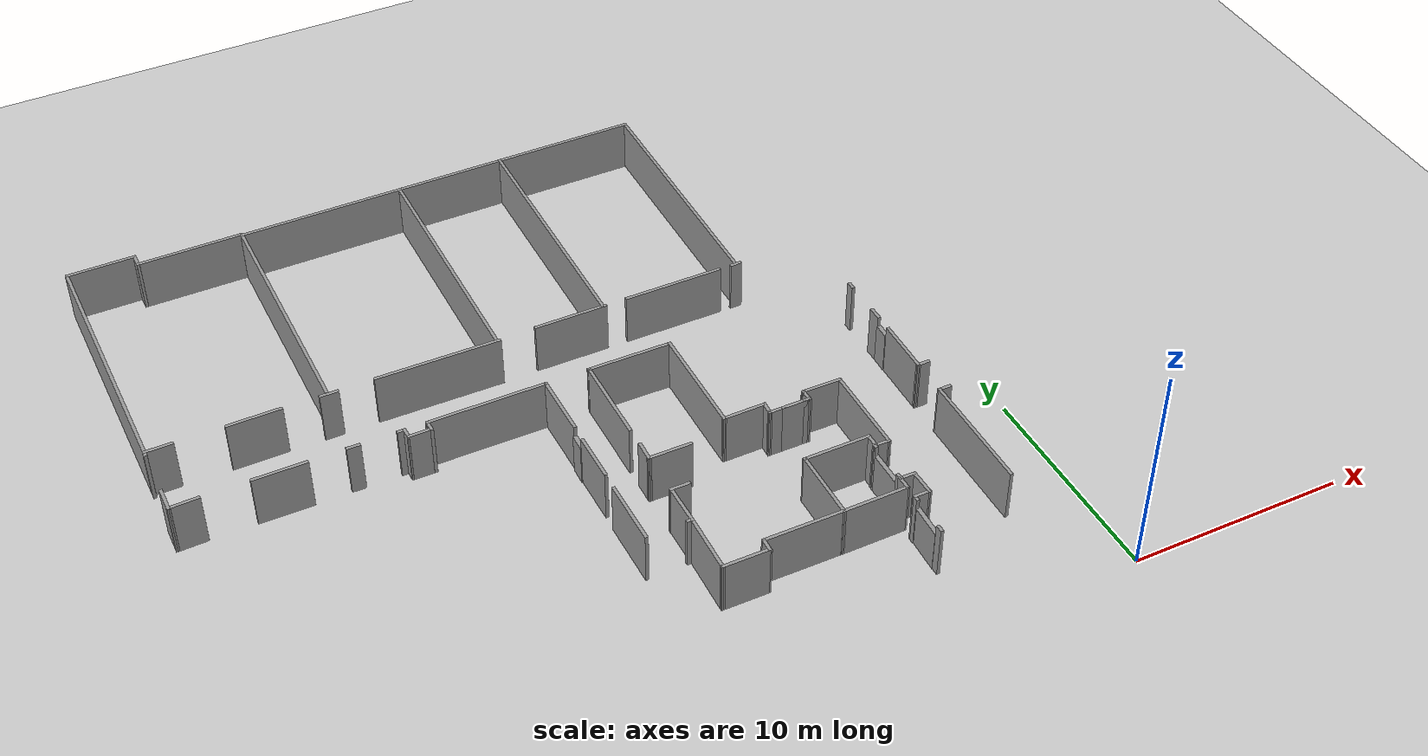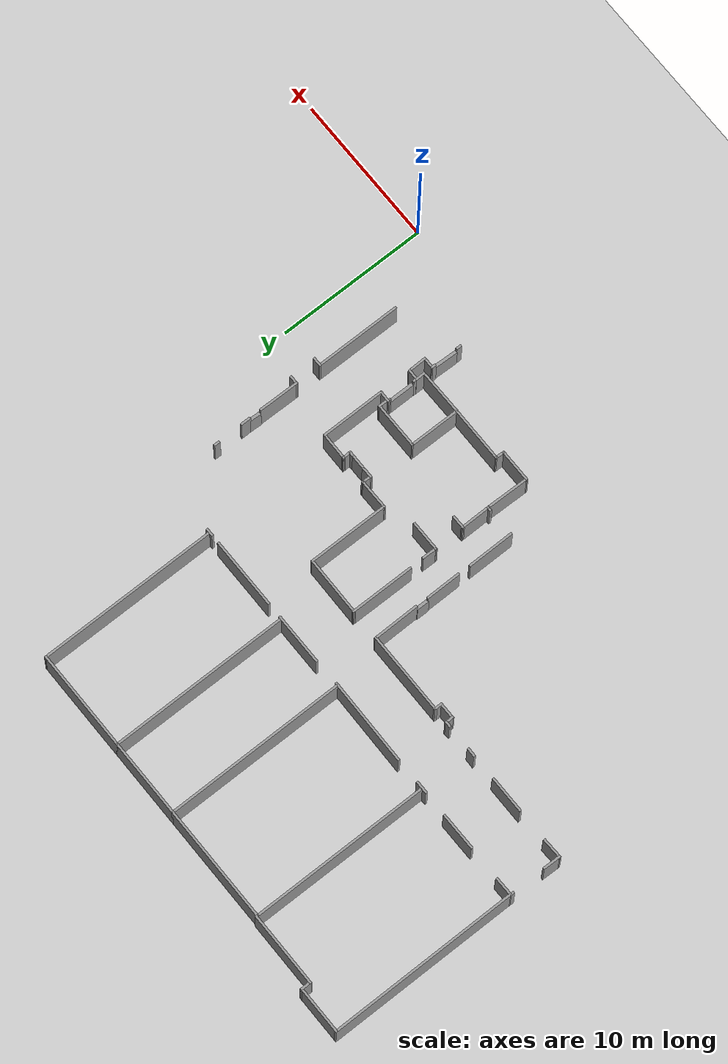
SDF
<sdf version="1.7">
 <world name="default">
  <model name="ground_plane">
   <static>1</static>
   <link name="link">
    <collision name="collision">
     <geometry><plane><normal>0 0 1</normal><size>100 100</size></plane></geometry>
     <surface><friction><ode><mu>100</mu><mu2>50</mu2></ode></friction></surface>
    </collision>
    <visual name="visual">
     <cast_shadows>0</cast_shadows>
     <geometry><plane><normal>0 0 1</normal><size>100 100</size></plane></geometry>
     <material>
      <script><uri>file://media/materials/scripts/gazebo.material</uri><name>Gazebo/Grey</name></script>
     </material>
    </visual>
   </link>
  </model>
  <model name="Hopper_Basement">
   <pose>6.01939 1.54901 0 0 -0 0</pose>
   <link name="Door_12">
    <collision name="Door_12_Collision">
     <geometry><box><size>1.59688 0.2 2</size></box></geometry>
     <pose>0 0 1 0 -0 0</pose>
    </collision>
    <visual name="Door_12_Visual">
     <pose>0 0 1 0 -0 0</pose>
     <geometry><box><size>1.59688 0.2 2</size></box></geometry>
     <material>
      <script><uri>file://media/materials/scripts/gazebo.material</uri><name>Gazebo/Grey</name></script>
     </material>
    </visual>
    <pose>-13.5825 2.58994 0 0 -0 1.5371</pose>
   </link>
   <link name="Door_13">
    <collision name="Door_13_Collision">
     <geometry><box><size>1.81181 0.2 2</size></box></geometry>
     <pose>0 0 1 0 -0 0</pose>
    </collision>
    <visual name="Door_13_Visual">
     <pose>0 0 1 0 -0 0</pose>
     <geometry><box><size>1.81181 0.2 2</size></box></geometry>
     <material>
      <script><uri>file://media/materials/scripts/gazebo.material</uri><name>Gazebo/Grey</name></script>
     </material>
    </visual>
    <pose>-13.5678 5.87601 0 0 -0 1.5708</pose>
   </link>
   <link name="Door_14">
    <collision name="Door_14_Collision">
     <geometry><box><size>0.8396 0.2 2</size></box></geometry>
     <pose>0 0 1 0 -0 0</pose>
    </collision>
    <visual name="Door_14_Visual">
     <pose>0 0 1 0 -0 0</pose>
     <geometry><box><size>0.8396 0.2 2</size></box></geometry>
     <material>
      <script><uri>file://media/materials/scripts/gazebo.material</uri><name>Gazebo/Grey</name></script>
     </material>
    </visual>
    <pose>-9.41509 13.4537 0 0 -0 1.53451</pose>
   </link>
   <link name="Door_15">
    <collision name="Door_15_Collision">
     <geometry><box><size>0.817522 0.2 2</size></box></geometry>
     <pose>0 0 1 0 -0 0</pose>
    </collision>
    <visual name="Door_15_Visual">
     <pose>0 0 1 0 -0 0</pose>
     <geometry><box><size>0.817522 0.2 2</size></box></geometry>
     <material>
      <script><uri>file://media/materials/scripts/gazebo.material</uri><name>Gazebo/Grey</name></script>
     </material>
    </visual>
    <pose>-24.285 12.9691 0 0 -0 -1.59292</pose>
   </link>
   <link name="Wall_102">
    <collision name="Wall_102_Collision">
     <geometry><box><size>0.551094 0.15 2.5</size></box></geometry>
     <pose>0 0 1.25 0 -0 0</pose>
    </collision>
    <visual name="Wall_102_Visual">
     <pose>0 0 1.25 0 -0 0</pose>
     <geometry><box><size>0.551094 0.15 2.5</size></box></geometry>
     <material>
      <script><uri>file://media/materials/scripts/gazebo.material</uri><name>Gazebo/Grey</name></script>
      <ambient>1 1 1 1</ambient>
     </material>
     <meta><layer>0</layer></meta>
    </visual>
    <pose>-13.3988 19.8843 0 0 -0 0.021736</pose>
   </link>
   <link name="Wall_19">
    <collision name="Wall_19_Collision">
     <geometry><box><size>0.363455 0.15 2.5</size></box></geometry>
     <pose>0 0 1.25 0 -0 0</pose>
    </collision>
    <visual name="Wall_19_Visual">
     <pose>0 0 1.25 0 -0 0</pose>
     <geometry><box><size>0.363455 0.15 2.5</size></box></geometry>
     <material>
      <script><uri>file://media/materials/scripts/gazebo.material</uri><name>Gazebo/Grey</name></script>
      <ambient>1 1 1 1</ambient>
     </material>
     <meta><layer>0</layer></meta>
    </visual>
    <pose>-13.6216 1.6256 0 0 -0 -1.5708</pose>
   </link>
   <link name="Wall_195">
    <collision name="Wall_195_Collision">
     <geometry><box><size>4.28295 0.15 2.5</size></box></geometry>
     <pose>0 0 1.25 0 -0 0</pose>
    </collision>
    <visual name="Wall_195_Visual">
     <pose>0 0 1.25 0 -0 0</pose>
     <geometry><box><size>4.28295 0.15 2.5</size></box></geometry>
     <material>
      <script><uri>file://media/materials/scripts/gazebo.material</uri><name>Gazebo/Grey</name></script>
      <ambient>1 1 1 1</ambient>
     </material>
     <meta><layer>0</layer></meta>
    </visual>
    <pose>-22.2568 14.3087 0 0 -0 1.56702</pose>
   </link>
   <link name="Wall_196">
    <collision name="Wall_196_Collision">
     <geometry><box><size>3.97116 0.15 2.5</size></box></geometry>
     <pose>0 0 1.25 0 -0 0</pose>
    </collision>
    <visual name="Wall_196_Visual">
     <pose>0 0 1.25 0 -0 0</pose>
     <geometry><box><size>3.97116 0.15 2.5</size></box></geometry>
     <material>
      <script><uri>file://media/materials/scripts/gazebo.material</uri><name>Gazebo/Grey</name></script>
      <ambient>1 1 1 1</ambient>
     </material>
     <meta><layer>0</layer></meta>
    </visual>
    <pose>-20.3385 16.3596 0 0 -0 -0.008163</pose>
   </link>
   <link name="Wall_197">
    <collision name="Wall_197_Collision">
     <geometry><box><size>5.40589 0.15 2.5</size></box></geometry>
     <pose>0 0 1.25 0 -0 0</pose>
    </collision>
    <visual name="Wall_197_Visual">
     <pose>0 0 1.25 0 -0 0</pose>
     <geometry><box><size>5.40589 0.15 2.5</size></box></geometry>
     <material>
      <script><uri>file://media/materials/scripts/gazebo.material</uri><name>Gazebo/Grey</name></script>
      <ambient>1 1 1 1</ambient>
     </material>
     <meta><layer>0</layer></meta>
    </visual>
    <pose>-18.4358 13.7161 0 0 -0 -1.57376</pose>
   </link>
   <link name="Wall_198">
    <collision name="Wall_198_Collision">
     <geometry><box><size>2.06838 0.15 2.5</size></box></geometry>
     <pose>0 0 1.25 0 -0 0</pose>
    </collision>
    <visual name="Wall_198_Visual">
     <pose>0 0 1.25 0 -0 0</pose>
     <geometry><box><size>2.06838 0.15 2.5</size></box></geometry>
     <material>
      <script><uri>file://media/materials/scripts/gazebo.material</uri><name>Gazebo/Grey</name></script>
      <ambient>1 1 1 1</ambient>
     </material>
     <meta><layer>0</layer></meta>
    </visual>
    <pose>-17.4844 11.0959 0 0 -0 0.00813</pose>
   </link>
   <link name="Wall_199">
    <collision name="Wall_199_Collision">
     <geometry><box><size>0.696084 0.15 2.5</size></box></geometry>
     <pose>0 0 1.25 0 -0 0</pose>
    </collision>
    <visual name="Wall_199_Visual">
     <pose>0 0 1.25 0 -0 0</pose>
     <geometry><box><size>0.696084 0.15 2.5</size></box></geometry>
     <material>
      <script><uri>file://media/materials/scripts/gazebo.material</uri><name>Gazebo/Grey</name></script>
      <ambient>1 1 1 1</ambient>
     </material>
     <meta><layer>0</layer></meta>
    </visual>
    <pose>-16.5409 10.8308 0 0 -0 -1.62788</pose>
   </link>
   <link name="Wall_200">
    <collision name="Wall_200_Collision">
     <geometry><box><size>0.789437 0.15 2.5</size></box></geometry>
     <pose>0 0 1.25 0 -0 0</pose>
    </collision>
    <visual name="Wall_200_Visual">
     <pose>0 0 1.25 0 -0 0</pose>
     <geometry><box><size>0.789437 0.15 2.5</size></box></geometry>
     <material>
      <script><uri>file://media/materials/scripts/gazebo.material</uri><name>Gazebo/Grey</name></script>
      <ambient>1 1 1 1</ambient>
     </material>
     <meta><layer>0</layer></meta>
    </visual>
    <pose>-16.2368 10.5579 0 0 -0 0</pose>
   </link>
   <link name="Wall_202">
    <collision name="Wall_202_Collision">
     <geometry><box><size>0.368901 0.15 2.5</size></box></geometry>
     <pose>0 0 1.25 0 -0 0</pose>
    </collision>
    <visual name="Wall_202_Visual">
     <pose>0 0 1.25 0 -0 0</pose>
     <geometry><box><size>0.368901 0.15 2.5</size></box></geometry>
     <material>
      <script><uri>file://media/materials/scripts/gazebo.material</uri><name>Gazebo/Grey</name></script>
      <ambient>1 1 1 1</ambient>
     </material>
     <meta><layer>0</layer></meta>
    </visual>
    <pose>-14.7785 10.5579 0 0 -0 0</pose>
   </link>
   <link name="Wall_203">
    <collision name="Wall_203_Collision">
     <geometry><box><size>0.649317 0.15 2.5</size></box></geometry>
     <pose>0 0 1.25 0 -0 0</pose>
    </collision>
    <visual name="Wall_203_Visual">
     <pose>0 0 1.25 0 -0 0</pose>
     <geometry><box><size>0.649317 0.15 2.5</size></box></geometry>
     <material>
      <script><uri>file://media/materials/scripts/gazebo.material</uri><name>Gazebo/Grey</name></script>
      <ambient>1 1 1 1</ambient>
     </material>
     <meta><layer>0</layer></meta>
    </visual>
    <pose>-14.6771 10.8074 0 0 -0 1.60204</pose>
   </link>
   <link name="Wall_204">
    <collision name="Wall_204_Collision">
     <geometry><box><size>1.86563 0.15 2.5</size></box></geometry>
     <pose>0 0 1.25 0 -0 0</pose>
    </collision>
    <visual name="Wall_204_Visual">
     <pose>0 0 1.25 0 -0 0</pose>
     <geometry><box><size>1.86563 0.15 2.5</size></box></geometry>
     <material>
      <script><uri>file://media/materials/scripts/gazebo.material</uri><name>Gazebo/Grey</name></script>
      <ambient>1 1 1 1</ambient>
     </material>
     <meta><layer>0</layer></meta>
    </visual>
    <pose>-13.8272 11.0492 0 0 -0 -0.009091</pose>
   </link>
   <link name="Wall_206">
    <collision name="Wall_206_Collision">
     <geometry><box><size>4.31227 0.15 2.5</size></box></geometry>
     <pose>0 0 1.25 0 -0 0</pose>
    </collision>
    <visual name="Wall_206_Visual">
     <pose>0 0 1.25 0 -0 0</pose>
     <geometry><box><size>4.31227 0.15 2.5</size></box></geometry>
     <material>
      <script><uri>file://media/materials/scripts/gazebo.material</uri><name>Gazebo/Grey</name></script>
      <ambient>1 1 1 1</ambient>
     </material>
     <meta><layer>0</layer></meta>
    </visual>
    <pose>-12.9384 8.94833 0 0 -0 -1.57067</pose>
   </link>
   <link name="Wall_207">
    <collision name="Wall_207_Collision">
     <geometry><box><size>0.806861 0.15 2.5</size></box></geometry>
     <pose>0 0 1.25 0 -0 0</pose>
    </collision>
    <visual name="Wall_207_Visual">
     <pose>0 0 1.25 0 -0 0</pose>
     <geometry><box><size>0.806861 0.15 2.5</size></box></geometry>
     <material>
      <script><uri>file://media/materials/scripts/gazebo.material</uri><name>Gazebo/Grey</name></script>
      <ambient>1 1 1 1</ambient>
     </material>
     <meta><layer>0</layer></meta>
    </visual>
    <pose>-13.2666 6.87689 0 0 -0 3.11208</pose>
   </link>
   <link name="Wall_208">
    <collision name="Wall_208_Collision">
     <geometry><box><size>0.25 0.15 2.5</size></box></geometry>
     <pose>0 0 1.25 0 -0 0</pose>
    </collision>
    <visual name="Wall_208_Visual">
     <pose>0 0 1.25 0 -0 0</pose>
     <geometry><box><size>0.25 0.15 2.5</size></box></geometry>
     <material>
      <script><uri>file://media/materials/scripts/gazebo.material</uri><name>Gazebo/Grey</name></script>
      <ambient>1 1 1 1</ambient>
     </material>
     <meta><layer>0</layer></meta>
    </visual>
    <pose>-13.595 6.83659 0 0 -0 -1.5708</pose>
   </link>
   <link name="Wall_210">
    <collision name="Wall_210_Collision">
     <geometry><box><size>0.344006 0.15 2.5</size></box></geometry>
     <pose>0 0 1.25 0 -0 0</pose>
    </collision>
    <visual name="Wall_210_Visual">
     <pose>0 0 1.25 0 -0 0</pose>
     <geometry><box><size>0.344006 0.15 2.5</size></box></geometry>
     <material>
      <script><uri>file://media/materials/scripts/gazebo.material</uri><name>Gazebo/Grey</name></script>
      <ambient>1 1 1 1</ambient>
     </material>
     <meta><layer>0</layer></meta>
    </visual>
    <pose>-13.5959 4.85334 0 0 -0 -1.51821</pose>
   </link>
   <link name="Wall_211">
    <collision name="Wall_211_Collision">
     <geometry><box><size>0.782198 0.15 2.5</size></box></geometry>
     <pose>0 0 1.25 0 -0 0</pose>
    </collision>
    <visual name="Wall_211_Visual">
     <pose>0 0 1.25 0 -0 0</pose>
     <geometry><box><size>0.782198 0.15 2.5</size></box></geometry>
     <material>
      <script><uri>file://media/materials/scripts/gazebo.material</uri><name>Gazebo/Grey</name></script>
      <ambient>1 1 1 1</ambient>
     </material>
     <meta><layer>0</layer></meta>
    </visual>
    <pose>-13.2747 4.75137 0 0 -0 -0.016128</pose>
   </link>
   <link name="Wall_212">
    <collision name="Wall_212_Collision">
     <geometry><box><size>1.29245 0.15 2.5</size></box></geometry>
     <pose>0 0 1.25 0 -0 0</pose>
    </collision>
    <visual name="Wall_212_Visual">
     <pose>0 0 1.25 0 -0 0</pose>
     <geometry><box><size>1.29245 0.15 2.5</size></box></geometry>
     <material>
      <script><uri>file://media/materials/scripts/gazebo.material</uri><name>Gazebo/Grey</name></script>
      <ambient>1 1 1 1</ambient>
     </material>
     <meta><layer>0</layer></meta>
    </visual>
    <pose>-12.9433 4.17525 0 0 -0 -1.54402</pose>
   </link>
   <link name="Wall_213">
    <collision name="Wall_213_Collision">
     <geometry><box><size>0.822985 0.15 2.5</size></box></geometry>
     <pose>0 0 1.25 0 -0 0</pose>
    </collision>
    <visual name="Wall_213_Visual">
     <pose>0 0 1.25 0 -0 0</pose>
     <geometry><box><size>0.822985 0.15 2.5</size></box></geometry>
     <material>
      <script><uri>file://media/materials/scripts/gazebo.material</uri><name>Gazebo/Grey</name></script>
      <ambient>1 1 1 1</ambient>
     </material>
     <meta><layer>0</layer></meta>
    </visual>
    <pose>-13.2645 3.60424 0 0 -0 3.14159</pose>
   </link>
   <link name="Wall_214">
    <collision name="Wall_214_Collision">
     <geometry><box><size>0.333824 0.15 2.5</size></box></geometry>
     <pose>0 0 1.25 0 -0 0</pose>
    </collision>
    <visual name="Wall_214_Visual">
     <pose>0 0 1.25 0 -0 0</pose>
     <geometry><box><size>0.333824 0.15 2.5</size></box></geometry>
     <material>
      <script><uri>file://media/materials/scripts/gazebo.material</uri><name>Gazebo/Grey</name></script>
      <ambient>1 1 1 1</ambient>
     </material>
     <meta><layer>0</layer></meta>
    </visual>
    <pose>-13.606 3.51247 0 0 -0 -1.6263</pose>
   </link>
   <link name="Wall_216">
    <collision name="Wall_216_Collision">
     <geometry><box><size>0.710821 0.15 2.5</size></box></geometry>
     <pose>0 0 1.25 0 -0 0</pose>
    </collision>
    <visual name="Wall_216_Visual">
     <pose>0 0 1.25 0 -0 0</pose>
     <geometry><box><size>0.710821 0.15 2.5</size></box></geometry>
     <material>
      <script><uri>file://media/materials/scripts/gazebo.material</uri><name>Gazebo/Grey</name></script>
      <ambient>1 1 1 1</ambient>
     </material>
     <meta><layer>0</layer></meta>
    </visual>
    <pose>-13.6111 4.47606 0 0 -0 -1.5708</pose>
   </link>
   <link name="Wall_217">
    <collision name="Wall_217_Collision">
     <geometry><box><size>3.10713 0.15 2.5</size></box></geometry>
     <pose>0 0 1.25 0 -0 0</pose>
    </collision>
    <visual name="Wall_217_Visual">
     <pose>0 0 1.25 0 -0 0</pose>
     <geometry><box><size>3.10713 0.15 2.5</size></box></geometry>
     <material>
      <script><uri>file://media/materials/scripts/gazebo.material</uri><name>Gazebo/Grey</name></script>
      <ambient>1 1 1 1</ambient>
     </material>
     <meta><layer>0</layer></meta>
    </visual>
    <pose>-15.0897 4.18035 0 0 -0 -3.13125</pose>
   </link>
   <link name="Wall_218">
    <collision name="Wall_218_Collision">
     <geometry><box><size>3.44356 0.15 2.5</size></box></geometry>
     <pose>0 0 1.25 0 -0 0</pose>
    </collision>
    <visual name="Wall_218_Visual">
     <pose>0 0 1.25 0 -0 0</pose>
     <geometry><box><size>3.44356 0.15 2.5</size></box></geometry>
     <material>
      <script><uri>file://media/materials/scripts/gazebo.material</uri><name>Gazebo/Grey</name></script>
      <ambient>1 1 1 1</ambient>
     </material>
     <meta><layer>0</layer></meta>
    </visual>
    <pose>-16.5631 5.81183 0 0 -0 1.5677</pose>
   </link>
   <link name="Wall_219">
    <collision name="Wall_219_Collision">
     <geometry><box><size>3.15804 0.15 2.5</size></box></geometry>
     <pose>0 0 1.25 0 -0 0</pose>
    </collision>
    <visual name="Wall_219_Visual">
     <pose>0 0 1.25 0 -0 0</pose>
     <geometry><box><size>3.15804 0.15 2.5</size></box></geometry>
     <material>
      <script><uri>file://media/materials/scripts/gazebo.material</uri><name>Gazebo/Grey</name></script>
      <ambient>1 1 1 1</ambient>
     </material>
     <meta><layer>0</layer></meta>
    </visual>
    <pose>-15.054 7.4637 0 0 -0 0.00339</pose>
   </link>
   <link name="Wall_220">
    <collision name="Wall_220_Collision">
     <geometry><box><size>0.710914 0.15 2.5</size></box></geometry>
     <pose>0 0 1.25 0 -0 0</pose>
    </collision>
    <visual name="Wall_220_Visual">
     <pose>0 0 1.25 0 -0 0</pose>
     <geometry><box><size>0.710914 0.15 2.5</size></box></geometry>
     <material>
      <script><uri>file://media/materials/scripts/gazebo.material</uri><name>Gazebo/Grey</name></script>
      <ambient>1 1 1 1</ambient>
     </material>
     <meta><layer>0</layer></meta>
    </visual>
    <pose>-13.55 7.18839 0 0 -0 -1.5708</pose>
   </link>
   <link name="Wall_222">
    <collision name="Wall_222_Collision">
     <geometry><box><size>0.874213 0.15 2.5</size></box></geometry>
     <pose>0 0 1.25 0 -0 0</pose>
    </collision>
    <visual name="Wall_222_Visual">
     <pose>0 0 1.25 0 -0 0</pose>
     <geometry><box><size>0.874213 0.15 2.5</size></box></geometry>
     <material>
      <script><uri>file://media/materials/scripts/gazebo.material</uri><name>Gazebo/Grey</name></script>
      <ambient>1 1 1 1</ambient>
     </material>
     <meta><layer>0</layer></meta>
    </visual>
    <pose>-32.7655 19.8747 0 0 -0 0</pose>
   </link>
   <link name="Wall_224">
    <collision name="Wall_224_Collision">
     <geometry><box><size>2.52355 0.15 2.5</size></box></geometry>
     <pose>0 0 1.25 0 -0 0</pose>
    </collision>
    <visual name="Wall_224_Visual">
     <pose>0 0 1.25 0 -0 0</pose>
     <geometry><box><size>2.52355 0.15 2.5</size></box></geometry>
     <material>
      <script><uri>file://media/materials/scripts/gazebo.material</uri><name>Gazebo/Grey</name></script>
      <ambient>1 1 1 1</ambient>
     </material>
     <meta><layer>0</layer></meta>
    </visual>
    <pose>-36.0574 19.8948 0 0 -0 -3.13594</pose>
   </link>
   <link name="Wall_226">
    <collision name="Wall_226_Collision">
     <geometry><box><size>1.31666 0.15 2.5</size></box></geometry>
     <pose>0 0 1.25 0 -0 0</pose>
    </collision>
    <visual name="Wall_226_Visual">
     <pose>0 0 1.25 0 -0 0</pose>
     <geometry><box><size>1.31666 0.15 2.5</size></box></geometry>
     <material>
      <script><uri>file://media/materials/scripts/gazebo.material</uri><name>Gazebo/Grey</name></script>
      <ambient>1 1 1 1</ambient>
     </material>
     <meta><layer>0</layer></meta>
    </visual>
    <pose>-40.1606 19.8948 0 0 -0 -3.1301</pose>
   </link>
   <link name="Wall_227">
    <collision name="Wall_227_Collision">
     <geometry><box><size>0.324833 0.15 2.5</size></box></geometry>
     <pose>0 0 1.25 0 -0 0</pose>
    </collision>
    <visual name="Wall_227_Visual">
     <pose>0 0 1.25 0 -0 0</pose>
     <geometry><box><size>0.324833 0.15 2.5</size></box></geometry>
     <material>
      <script><uri>file://media/materials/scripts/gazebo.material</uri><name>Gazebo/Grey</name></script>
      <ambient>1 1 1 1</ambient>
     </material>
     <meta><layer>0</layer></meta>
    </visual>
    <pose>-40.7506 19.801 0 0 -0 -1.64757</pose>
   </link>
   <link name="Wall_229">
    <collision name="Wall_229_Collision">
     <geometry><box><size>1.23622 0.15 2.5</size></box></geometry>
     <pose>0 0 1.25 0 -0 0</pose>
    </collision>
    <visual name="Wall_229_Visual">
     <pose>0 0 1.25 0 -0 0</pose>
     <geometry><box><size>1.23622 0.15 2.5</size></box></geometry>
     <material>
      <script><uri>file://media/materials/scripts/gazebo.material</uri><name>Gazebo/Grey</name></script>
      <ambient>1 1 1 1</ambient>
     </material>
     <meta><layer>0</layer></meta>
    </visual>
    <pose>-40.764 16.8778 0 0 -0 -1.58314</pose>
   </link>
   <link name="Wall_230">
    <collision name="Wall_230_Collision">
     <geometry><box><size>1.41109 0.15 2.5</size></box></geometry>
     <pose>0 0 1.25 0 -0 0</pose>
    </collision>
    <visual name="Wall_230_Visual">
     <pose>0 0 1.25 0 -0 0</pose>
     <geometry><box><size>1.41109 0.15 2.5</size></box></geometry>
     <material>
      <script><uri>file://media/materials/scripts/gazebo.material</uri><name>Gazebo/Grey</name></script>
      <ambient>1 1 1 1</ambient>
     </material>
     <meta><layer>0</layer></meta>
    </visual>
    <pose>-40.1404 16.3548 0 0 -0 0.031904</pose>
   </link>
   <link name="Wall_232">
    <collision name="Wall_232_Collision">
     <geometry><box><size>2.48321 0.15 2.5</size></box></geometry>
     <pose>0 0 1.25 0 -0 0</pose>
    </collision>
    <visual name="Wall_232_Visual">
     <pose>0 0 1.25 0 -0 0</pose>
     <geometry><box><size>2.48321 0.15 2.5</size></box></geometry>
     <material>
      <script><uri>file://media/materials/scripts/gazebo.material</uri><name>Gazebo/Grey</name></script>
      <ambient>1 1 1 1</ambient>
     </material>
     <meta><layer>0</layer></meta>
    </visual>
    <pose>-36.1043 16.375 0 0 -0 0</pose>
   </link>
   <link name="Wall_234">
    <collision name="Wall_234_Collision">
     <geometry><box><size>0.632912 0.15 2.5</size></box></geometry>
     <pose>0 0 1.25 0 -0 0</pose>
    </collision>
    <visual name="Wall_234_Visual">
     <pose>0 0 1.25 0 -0 0</pose>
     <geometry><box><size>0.632912 0.15 2.5</size></box></geometry>
     <material>
      <script><uri>file://media/materials/scripts/gazebo.material</uri><name>Gazebo/Grey</name></script>
      <ambient>1 1 1 1</ambient>
     </material>
     <meta><layer>0</layer></meta>
    </visual>
    <pose>-32.9264 16.3817 0 0 -0 -0.027771</pose>
   </link>
   <link name="Wall_236">
    <collision name="Wall_236_Collision">
     <geometry><box><size>0.418516 0.15 2.5</size></box></geometry>
     <pose>0 0 1.25 0 -0 0</pose>
    </collision>
    <visual name="Wall_236_Visual">
     <pose>0 0 1.25 0 -0 0</pose>
     <geometry><box><size>0.418516 0.15 2.5</size></box></geometry>
     <material>
      <script><uri>file://media/materials/scripts/gazebo.material</uri><name>Gazebo/Grey</name></script>
      <ambient>1 1 1 1</ambient>
     </material>
     <meta><layer>0</layer></meta>
    </visual>
    <pose>-30.8078 16.375 0 0 -0 0</pose>
   </link>
   <link name="Wall_237">
    <collision name="Wall_237_Collision">
     <geometry><box><size>0.592702 0.15 2.5</size></box></geometry>
     <pose>0 0 1.25 0 -0 0</pose>
    </collision>
    <visual name="Wall_237_Visual">
     <pose>0 0 1.25 0 -0 0</pose>
     <geometry><box><size>0.592702 0.15 2.5</size></box></geometry>
     <material>
      <script><uri>file://media/materials/scripts/gazebo.material</uri><name>Gazebo/Grey</name></script>
      <ambient>1 1 1 1</ambient>
     </material>
     <meta><layer>0</layer></meta>
    </visual>
    <pose>-30.667 16.1537 0 0 -0 -1.5405</pose>
   </link>
   <link name="Wall_238">
    <collision name="Wall_238_Collision">
     <geometry><box><size>1.15568 0.15 2.5</size></box></geometry>
     <pose>0 0 1.25 0 -0 0</pose>
    </collision>
    <visual name="Wall_238_Visual">
     <pose>0 0 1.25 0 -0 0</pose>
     <geometry><box><size>1.15568 0.15 2.5</size></box></geometry>
     <material>
      <script><uri>file://media/materials/scripts/gazebo.material</uri><name>Gazebo/Grey</name></script>
      <ambient>1 1 1 1</ambient>
     </material>
     <meta><layer>0</layer></meta>
    </visual>
    <pose>-30.1574 15.9325 0 0 -0 0</pose>
   </link>
   <link name="Wall_239">
    <collision name="Wall_239_Collision">
     <geometry><box><size>0.592702 0.15 2.5</size></box></geometry>
     <pose>0 0 1.25 0 -0 0</pose>
    </collision>
    <visual name="Wall_239_Visual">
     <pose>0 0 1.25 0 -0 0</pose>
     <geometry><box><size>0.592702 0.15 2.5</size></box></geometry>
     <material>
      <script><uri>file://media/materials/scripts/gazebo.material</uri><name>Gazebo/Grey</name></script>
      <ambient>1 1 1 1</ambient>
     </material>
     <meta><layer>0</layer></meta>
    </visual>
    <pose>-29.6546 16.1537 0 0 -0 1.5708</pose>
   </link>
   <link name="Wall_240">
    <collision name="Wall_240_Collision">
     <geometry><box><size>5.52703 0.15 2.5</size></box></geometry>
     <pose>0 0 1.25 0 -0 0</pose>
    </collision>
    <visual name="Wall_240_Visual">
     <pose>0 0 1.25 0 -0 0</pose>
     <geometry><box><size>5.52703 0.15 2.5</size></box></geometry>
     <material>
      <script><uri>file://media/materials/scripts/gazebo.material</uri><name>Gazebo/Grey</name></script>
      <ambient>1 1 1 1</ambient>
     </material>
     <meta><layer>0</layer></meta>
    </visual>
    <pose>-26.9661 16.375 0 0 -0 0</pose>
   </link>
   <link name="Wall_241">
    <collision name="Wall_241_Collision">
     <geometry><box><size>3.10011 0.15 2.5</size></box></geometry>
     <pose>0 0 1.25 0 -0 0</pose>
    </collision>
    <visual name="Wall_241_Visual">
     <pose>0 0 1.25 0 -0 0</pose>
     <geometry><box><size>3.10011 0.15 2.5</size></box></geometry>
     <material>
      <script><uri>file://media/materials/scripts/gazebo.material</uri><name>Gazebo/Grey</name></script>
      <ambient>1 1 1 1</ambient>
     </material>
     <meta><layer>0</layer></meta>
    </visual>
    <pose>-24.2641 14.9 0 0 -0 -1.56171</pose>
   </link>
   <link name="Wall_243">
    <collision name="Wall_243_Collision">
     <geometry><box><size>2.36266 0.15 2.5</size></box></geometry>
     <pose>0 0 1.25 0 -0 0</pose>
    </collision>
    <visual name="Wall_243_Visual">
     <pose>0 0 1.25 0 -0 0</pose>
     <geometry><box><size>2.36266 0.15 2.5</size></box></geometry>
     <material>
      <script><uri>file://media/materials/scripts/gazebo.material</uri><name>Gazebo/Grey</name></script>
      <ambient>1 1 1 1</ambient>
     </material>
     <meta><layer>0</layer></meta>
    </visual>
    <pose>-24.2708 11.4203 0 0 -0 -1.56474</pose>
   </link>
   <link name="Wall_245">
    <collision name="Wall_245_Collision">
     <geometry><box><size>3.14034 0.15 2.5</size></box></geometry>
     <pose>0 0 1.25 0 -0 0</pose>
    </collision>
    <visual name="Wall_245_Visual">
     <pose>0 0 1.25 0 -0 0</pose>
     <geometry><box><size>3.14034 0.15 2.5</size></box></geometry>
     <material>
      <script><uri>file://media/materials/scripts/gazebo.material</uri><name>Gazebo/Grey</name></script>
      <ambient>1 1 1 1</ambient>
     </material>
     <meta><layer>0</layer></meta>
    </visual>
    <pose>-24.2843 7.92056 0 0 -0 -1.56631</pose>
   </link>
   <link name="Wall_247">
    <collision name="Wall_247_Collision">
     <geometry><box><size>1.0351 0.15 2.5</size></box></geometry>
     <pose>0 0 1.25 0 -0 0</pose>
    </collision>
    <visual name="Wall_247_Visual">
     <pose>0 0 1.25 0 -0 0</pose>
     <geometry><box><size>1.0351 0.15 2.5</size></box></geometry>
     <material>
      <script><uri>file://media/materials/scripts/gazebo.material</uri><name>Gazebo/Grey</name></script>
      <ambient>1 1 1 1</ambient>
     </material>
     <meta><layer>0</layer></meta>
    </visual>
    <pose>-22.2595 10.7968 0 0 -0 -1.58595</pose>
   </link>
   <link name="Wall_248">
    <collision name="Wall_248_Collision">
     <geometry><box><size>2.05451 0.15 2.5</size></box></geometry>
     <pose>0 0 1.25 0 -0 0</pose>
    </collision>
    <visual name="Wall_248_Visual">
     <pose>0 0 1.25 0 -0 0</pose>
     <geometry><box><size>2.05451 0.15 2.5</size></box></geometry>
     <material>
      <script><uri>file://media/materials/scripts/gazebo.material</uri><name>Gazebo/Grey</name></script>
      <ambient>1 1 1 1</ambient>
     </material>
     <meta><layer>0</layer></meta>
    </visual>
    <pose>-21.3141 10.3543 0 0 -0 0</pose>
   </link>
   <link name="Wall_252">
    <collision name="Wall_252_Collision">
     <geometry><box><size>0.941247 0.15 2.5</size></box></geometry>
     <pose>0 0 1.25 0 -0 0</pose>
    </collision>
    <visual name="Wall_252_Visual">
     <pose>0 0 1.25 0 -0 0</pose>
     <geometry><box><size>0.941247 0.15 2.5</size></box></geometry>
     <material>
      <script><uri>file://media/materials/scripts/gazebo.material</uri><name>Gazebo/Grey</name></script>
      <ambient>1 1 1 1</ambient>
     </material>
     <meta><layer>0</layer></meta>
    </visual>
    <pose>-21.8438 8.32953 0 0 -0 3.14159</pose>
   </link>
   <link name="Wall_253">
    <collision name="Wall_253_Collision">
     <geometry><box><size>2.04072 0.15 2.5</size></box></geometry>
     <pose>0 0 1.25 0 -0 0</pose>
    </collision>
    <visual name="Wall_253_Visual">
     <pose>0 0 1.25 0 -0 0</pose>
     <geometry><box><size>2.04072 0.15 2.5</size></box></geometry>
     <material>
      <script><uri>file://media/materials/scripts/gazebo.material</uri><name>Gazebo/Grey</name></script>
      <ambient>1 1 1 1</ambient>
     </material>
     <meta><layer>0</layer></meta>
    </visual>
    <pose>-22.2327 7.38419 0 0 -0 -1.5637</pose>
   </link>
   <link name="Wall_254">
    <collision name="Wall_254_Collision">
     <geometry><box><size>0.338205 0.15 2.5</size></box></geometry>
     <pose>0 0 1.25 0 -0 0</pose>
    </collision>
    <visual name="Wall_254_Visual">
     <pose>0 0 1.25 0 -0 0</pose>
     <geometry><box><size>0.338205 0.15 2.5</size></box></geometry>
     <material>
      <script><uri>file://media/materials/scripts/gazebo.material</uri><name>Gazebo/Grey</name></script>
      <ambient>1 1 1 1</ambient>
     </material>
     <meta><layer>0</layer></meta>
    </visual>
    <pose>-22.3198 6.43886 0 0 -0 3.14159</pose>
   </link>
   <link name="Wall_256">
    <collision name="Wall_256_Collision">
     <geometry><box><size>2.95278 0.15 2.5</size></box></geometry>
     <pose>0 0 1.25 0 -0 0</pose>
    </collision>
    <visual name="Wall_256_Visual">
     <pose>0 0 1.25 0 -0 0</pose>
     <geometry><box><size>2.95278 0.15 2.5</size></box></geometry>
     <material>
      <script><uri>file://media/materials/scripts/gazebo.material</uri><name>Gazebo/Grey</name></script>
      <ambient>1 1 1 1</ambient>
     </material>
     <meta><layer>0</layer></meta>
    </visual>
    <pose>-22.2528 5.03761 0 0 -0 -1.58993</pose>
   </link>
   <link name="Wall_257">
    <collision name="Wall_257_Collision">
     <geometry><box><size>2.2284 0.15 2.5</size></box></geometry>
     <pose>0 0 1.25 0 -0 0</pose>
    </collision>
    <visual name="Wall_257_Visual">
     <pose>0 0 1.25 0 -0 0</pose>
     <geometry><box><size>2.2284 0.15 2.5</size></box></geometry>
     <material>
      <script><uri>file://media/materials/scripts/gazebo.material</uri><name>Gazebo/Grey</name></script>
      <ambient>1 1 1 1</ambient>
     </material>
     <meta><layer>0</layer></meta>
    </visual>
    <pose>-21.2404 3.63636 0 0 -0 0</pose>
   </link>
   <link name="Wall_258">
    <collision name="Wall_258_Collision">
     <geometry><box><size>0.68653 0.15 2.5</size></box></geometry>
     <pose>0 0 1.25 0 -0 0</pose>
    </collision>
    <visual name="Wall_258_Visual">
     <pose>0 0 1.25 0 -0 0</pose>
     <geometry><box><size>0.68653 0.15 2.5</size></box></geometry>
     <material>
      <script><uri>file://media/materials/scripts/gazebo.material</uri><name>Gazebo/Grey</name></script>
      <ambient>1 1 1 1</ambient>
     </material>
     <meta><layer>0</layer></meta>
    </visual>
    <pose>-20.1945 3.90455 0 0 -0 1.5458</pose>
   </link>
   <link name="Wall_259">
    <collision name="Wall_259_Collision">
     <geometry><box><size>3.74363 0.15 2.5</size></box></geometry>
     <pose>0 0 1.25 0 -0 0</pose>
    </collision>
    <visual name="Wall_259_Visual">
     <pose>0 0 1.25 0 -0 0</pose>
     <geometry><box><size>3.74363 0.15 2.5</size></box></geometry>
     <material>
      <script><uri>file://media/materials/scripts/gazebo.material</uri><name>Gazebo/Grey</name></script>
      <ambient>1 1 1 1</ambient>
     </material>
     <meta><layer>0</layer></meta>
    </visual>
    <pose>-18.391 4.17273 0 0 -0 0</pose>
   </link>
   <link name="Wall_264">
    <collision name="Wall_264_Collision">
     <geometry><box><size>11.9251 0.15 2.5</size></box></geometry>
     <pose>0 0 1.25 0 -0 0</pose>
    </collision>
    <visual name="Wall_264_Visual">
     <pose>0 0 1.25 0 -0 0</pose>
     <geometry><box><size>11.9251 0.15 2.5</size></box></geometry>
     <material>
      <script><uri>file://media/materials/scripts/gazebo.material</uri><name>Gazebo/Grey</name></script>
      <ambient>1 1 1 1</ambient>
     </material>
     <meta><layer>0</layer></meta>
    </visual>
    <pose>-32.8019 25.9231 0 0 -0 1.56778</pose>
   </link>
   <link name="Wall_265">
    <collision name="Wall_265_Collision">
     <geometry><box><size>7.84632 0.15 2.5</size></box></geometry>
     <pose>0 0 1.25 0 -0 0</pose>
    </collision>
    <visual name="Wall_265_Visual">
     <pose>0 0 1.25 0 -0 0</pose>
     <geometry><box><size>7.84632 0.15 2.5</size></box></geometry>
     <material>
      <script><uri>file://media/materials/scripts/gazebo.material</uri><name>Gazebo/Grey</name></script>
      <ambient>1 1 1 1</ambient>
     </material>
     <meta><layer>0</layer></meta>
    </visual>
    <pose>-28.936 31.8107 0 0 -0 0</pose>
   </link>
   <link name="Wall_266">
    <collision name="Wall_266_Collision">
     <geometry><box><size>12.0669 0.15 2.5</size></box></geometry>
     <pose>0 0 1.25 0 -0 0</pose>
    </collision>
    <visual name="Wall_266_Visual">
     <pose>0 0 1.25 0 -0 0</pose>
     <geometry><box><size>12.0669 0.15 2.5</size></box></geometry>
     <material>
      <script><uri>file://media/materials/scripts/gazebo.material</uri><name>Gazebo/Grey</name></script>
      <ambient>1 1 1 1</ambient>
     </material>
     <meta><layer>0</layer></meta>
    </visual>
    <pose>-25.0879 25.8522 0 0 -0 -1.5708</pose>
   </link>
   <link name="Wall_268">
    <collision name="Wall_268_Collision">
     <geometry><box><size>12.75 0.15 2.5</size></box></geometry>
     <pose>0 0 1.25 0 -0 0</pose>
    </collision>
    <visual name="Wall_268_Visual">
     <pose>0 0 1.25 0 -0 0</pose>
     <geometry><box><size>12.75 0.15 2.5</size></box></geometry>
     <material>
      <script><uri>file://media/materials/scripts/gazebo.material</uri><name>Gazebo/Grey</name></script>
      <ambient>1 1 1 1</ambient>
     </material>
     <meta><layer>0</layer></meta>
    </visual>
    <pose>-40.7439 26.1881 0 0 -0 1.5708</pose>
   </link>
   <link name="Wall_269">
    <collision name="Wall_269_Collision">
     <geometry><box><size>3.25 0.15 2.5</size></box></geometry>
     <pose>0 0 1.25 0 -0 0</pose>
    </collision>
    <visual name="Wall_269_Visual">
     <pose>0 0 1.25 0 -0 0</pose>
     <geometry><box><size>3.25 0.15 2.5</size></box></geometry>
     <material>
      <script><uri>file://media/materials/scripts/gazebo.material</uri><name>Gazebo/Grey</name></script>
      <ambient>1 1 1 1</ambient>
     </material>
     <meta><layer>0</layer></meta>
    </visual>
    <pose>-39.1939 32.4881 0 0 -0 0</pose>
   </link>
   <link name="Wall_270">
    <collision name="Wall_270_Collision">
     <geometry><box><size>0.75 0.15 2.5</size></box></geometry>
     <pose>0 0 1.25 0 -0 0</pose>
    </collision>
    <visual name="Wall_270_Visual">
     <pose>0 0 1.25 0 -0 0</pose>
     <geometry><box><size>0.75 0.15 2.5</size></box></geometry>
     <material>
      <script><uri>file://media/materials/scripts/gazebo.material</uri><name>Gazebo/Grey</name></script>
      <ambient>1 1 1 1</ambient>
     </material>
     <meta><layer>0</layer></meta>
    </visual>
    <pose>-37.6439 32.1881 0 0 -0 -1.5708</pose>
   </link>
   <link name="Wall_271">
    <collision name="Wall_271_Collision">
     <geometry><box><size>5.00967 0.15 2.5</size></box></geometry>
     <pose>0 0 1.25 0 -0 0</pose>
    </collision>
    <visual name="Wall_271_Visual">
     <pose>0 0 1.25 0 -0 0</pose>
     <geometry><box><size>5.00967 0.15 2.5</size></box></geometry>
     <material>
      <script><uri>file://media/materials/scripts/gazebo.material</uri><name>Gazebo/Grey</name></script>
      <ambient>1 1 1 1</ambient>
     </material>
     <meta><layer>0</layer></meta>
    </visual>
    <pose>-35.214 31.8849 0 0 -0 -0.001347</pose>
   </link>
   <link name="Wall_274">
    <collision name="Wall_274_Collision">
     <geometry><box><size>5.25 0.15 2.5</size></box></geometry>
     <pose>0 0 1.25 0 -0 0</pose>
    </collision>
    <visual name="Wall_274_Visual">
     <pose>0 0 1.25 0 -0 0</pose>
     <geometry><box><size>5.25 0.15 2.5</size></box></geometry>
     <material>
      <script><uri>file://media/materials/scripts/gazebo.material</uri><name>Gazebo/Grey</name></script>
      <ambient>1 1 1 1</ambient>
     </material>
     <meta><layer>0</layer></meta>
    </visual>
    <pose>-22.5379 31.8107 0 0 -0 0</pose>
   </link>
   <link name="Wall_275">
    <collision name="Wall_275_Collision">
     <geometry><box><size>12.0472 0.15 2.5</size></box></geometry>
     <pose>0 0 1.25 0 -0 0</pose>
    </collision>
    <visual name="Wall_275_Visual">
     <pose>0 0 1.25 0 -0 0</pose>
     <geometry><box><size>12.0472 0.15 2.5</size></box></geometry>
     <material>
      <script><uri>file://media/materials/scripts/gazebo.material</uri><name>Gazebo/Grey</name></script>
      <ambient>1 1 1 1</ambient>
     </material>
     <meta><layer>0</layer></meta>
    </visual>
    <pose>-19.9928 25.862 0 0 -0 -1.57163</pose>
   </link>
   <link name="Wall_277">
    <collision name="Wall_277_Collision">
     <geometry><box><size>6.75 0.15 2.5</size></box></geometry>
     <pose>0 0 1.25 0 -0 0</pose>
    </collision>
    <visual name="Wall_277_Visual">
     <pose>0 0 1.25 0 -0 0</pose>
     <geometry><box><size>6.75 0.15 2.5</size></box></geometry>
     <material>
      <script><uri>file://media/materials/scripts/gazebo.material</uri><name>Gazebo/Grey</name></script>
      <ambient>1 1 1 1</ambient>
     </material>
     <meta><layer>0</layer></meta>
    </visual>
    <pose>-16.6879 31.8107 0 0 -0 0</pose>
   </link>
   <link name="Wall_278">
    <collision name="Wall_278_Collision">
     <geometry><box><size>12.0164 0.15 2.5</size></box></geometry>
     <pose>0 0 1.25 0 -0 0</pose>
    </collision>
    <visual name="Wall_278_Visual">
     <pose>0 0 1.25 0 -0 0</pose>
     <geometry><box><size>12.0164 0.15 2.5</size></box></geometry>
     <material>
      <script><uri>file://media/materials/scripts/gazebo.material</uri><name>Gazebo/Grey</name></script>
      <ambient>1 1 1 1</ambient>
     </material>
     <meta><layer>0</layer></meta>
    </visual>
    <pose>-13.3929 25.8775 0 0 -0 -1.57164</pose>
   </link>
   <link name="Wall_343">
    <collision name="Wall_343_Collision">
     <geometry><box><size>1.17934 0.15 2.5</size></box></geometry>
     <pose>0 0 1.25 0 -0 0</pose>
    </collision>
    <visual name="Wall_343_Visual">
     <pose>0 0 1.25 0 -0 0</pose>
     <geometry><box><size>1.17934 0.15 2.5</size></box></geometry>
     <material>
      <script><uri>file://media/materials/scripts/gazebo.material</uri><name>Gazebo/Grey</name></script>
      <ambient>1 1 1 1</ambient>
     </material>
     <meta><layer>0</layer></meta>
    </visual>
    <pose>-15.4024 10.5579 0 0 -0 0</pose>
   </link>
   <link name="Wall_83">
    <collision name="Wall_83_Collision">
     <geometry><box><size>0.416496 0.15 2.5</size></box></geometry>
     <pose>0 0 1.25 0 -0 0</pose>
    </collision>
    <visual name="Wall_83_Visual">
     <pose>0 0 1.25 0 -0 0</pose>
     <geometry><box><size>0.416496 0.15 2.5</size></box></geometry>
     <material>
      <script><uri>file://media/materials/scripts/gazebo.material</uri><name>Gazebo/Grey</name></script>
      <ambient>1 1 1 1</ambient>
     </material>
     <meta><layer>0</layer></meta>
    </visual>
    <pose>-9.4537 16.239 0 0 -0 -1.56305</pose>
   </link>
   <link name="Wall_85">
    <collision name="Wall_85_Collision">
     <geometry><box><size>0.680829 0.15 2.5</size></box></geometry>
     <pose>0 0 1.25 0 -0 0</pose>
    </collision>
    <visual name="Wall_85_Visual">
     <pose>0 0 1.25 0 -0 0</pose>
     <geometry><box><size>0.680829 0.15 2.5</size></box></geometry>
     <material>
      <script><uri>file://media/materials/scripts/gazebo.material</uri><name>Gazebo/Grey</name></script>
      <ambient>1 1 1 1</ambient>
     </material>
     <meta><layer>0</layer></meta>
    </visual>
    <pose>-9.42864 14.1062 0 0 -0 -1.56375</pose>
   </link>
   <link name="Wall_88">
    <collision name="Wall_88_Collision">
     <geometry><box><size>2.73909 0.15 2.5</size></box></geometry>
     <pose>0 0 1.25 0 -0 0</pose>
    </collision>
    <visual name="Wall_88_Visual">
     <pose>0 0 1.25 0 -0 0</pose>
     <geometry><box><size>2.73909 0.15 2.5</size></box></geometry>
     <material>
      <script><uri>file://media/materials/scripts/gazebo.material</uri><name>Gazebo/Grey</name></script>
      <ambient>1 1 1 1</ambient>
     </material>
     <meta><layer>0</layer></meta>
    </visual>
    <pose>-9.44288 11.6522 0 0 -0 -1.5809</pose>
   </link>
   <link name="Wall_89">
    <collision name="Wall_89_Collision">
     <geometry><box><size>0.633991 0.15 2.5</size></box></geometry>
     <pose>0 0 1.25 0 -0 0</pose>
    </collision>
    <visual name="Wall_89_Visual">
     <pose>0 0 1.25 0 -0 0</pose>
     <geometry><box><size>0.633991 0.15 2.5</size></box></geometry>
     <material>
      <script><uri>file://media/materials/scripts/gazebo.material</uri><name>Gazebo/Grey</name></script>
      <ambient>1 1 1 1</ambient>
     </material>
     <meta><layer>0</layer></meta>
    </visual>
    <pose>-9.21405 10.3576 0 0 -0 0</pose>
   </link>
   <link name="Wall_9">
    <collision name="Wall_9_Collision">
     <geometry><box><size>5.75 0.15 2.5</size></box></geometry>
     <pose>0 0 1.25 0 -0 0</pose>
    </collision>
    <visual name="Wall_9_Visual">
     <pose>0 0 1.25 0 -0 0</pose>
     <geometry><box><size>5.75 0.15 2.5</size></box></geometry>
     <material>
      <script><uri>file://media/materials/scripts/gazebo.material</uri><name>Gazebo/Grey</name></script>
      <ambient>1 1 1 1</ambient>
     </material>
     <meta><layer>0</layer></meta>
    </visual>
    <pose>-9.43979 5.80002 0 0 -0 -1.5708</pose>
   </link>
   <link name="Wall_91">
    <collision name="Wall_91_Collision">
     <geometry><box><size>0.642561 0.15 2.5</size></box></geometry>
     <pose>0 0 1.25 0 -0 0</pose>
    </collision>
    <visual name="Wall_91_Visual">
     <pose>0 0 1.25 0 -0 0</pose>
     <geometry><box><size>0.642561 0.15 2.5</size></box></geometry>
     <material>
      <script><uri>file://media/materials/scripts/gazebo.material</uri><name>Gazebo/Grey</name></script>
      <ambient>1 1 1 1</ambient>
     </material>
     <meta><layer>0</layer></meta>
    </visual>
    <pose>-9.19354 8.60388 0 0 -0 0.015681</pose>
   </link>
   <link name="Wall_94">
    <collision name="Wall_94_Collision">
     <geometry><box><size>5.83449 0.15 2.5</size></box></geometry>
     <pose>0 0 1.25 0 -0 0</pose>
    </collision>
    <visual name="Wall_94_Visual">
     <pose>0 0 1.25 0 -0 0</pose>
     <geometry><box><size>5.83449 0.15 2.5</size></box></geometry>
     <material>
      <script><uri>file://media/materials/scripts/gazebo.material</uri><name>Gazebo/Grey</name></script>
      <ambient>1 1 1 1</ambient>
     </material>
     <meta><layer>0</layer></meta>
    </visual>
    <pose>-27.8262 19.861 0 0 -0 -0.010582</pose>
   </link>
   <link name="Wall_96">
    <collision name="Wall_96_Collision">
     <geometry><box><size>3.45838 0.15 2.5</size></box></geometry>
     <pose>0 0 1.25 0 -0 0</pose>
    </collision>
    <visual name="Wall_96_Visual">
     <pose>0 0 1.25 0 -0 0</pose>
     <geometry><box><size>3.45838 0.15 2.5</size></box></geometry>
     <material>
      <script><uri>file://media/materials/scripts/gazebo.material</uri><name>Gazebo/Grey</name></script>
      <ambient>1 1 1 1</ambient>
     </material>
     <meta><layer>0</layer></meta>
    </visual>
    <pose>-21.5556 19.891 0 0 -0 0</pose>
   </link>
   <link name="Wall_98">
    <collision name="Wall_98_Collision">
     <geometry><box><size>4.72139 0.15 2.5</size></box></geometry>
     <pose>0 0 1.25 0 -0 0</pose>
    </collision>
    <visual name="Wall_98_Visual">
     <pose>0 0 1.25 0 -0 0</pose>
     <geometry><box><size>4.72139 0.15 2.5</size></box></geometry>
     <material>
      <script><uri>file://media/materials/scripts/gazebo.material</uri><name>Gazebo/Grey</name></script>
      <ambient>1 1 1 1</ambient>
     </material>
     <meta><layer>0</layer></meta>
    </visual>
    <pose>-16.5331 19.891 0 0 -0 0</pose>
   </link>
   <static>1</static>
  </model>
 </world>
</sdf>
